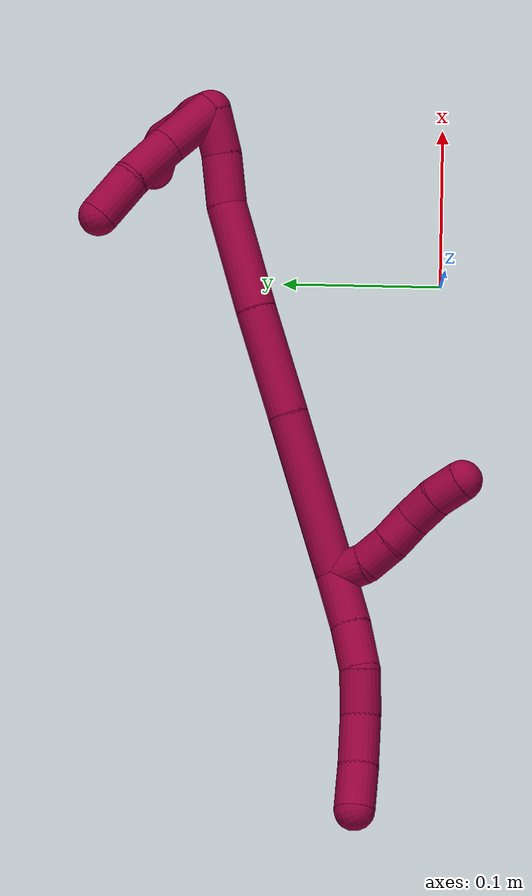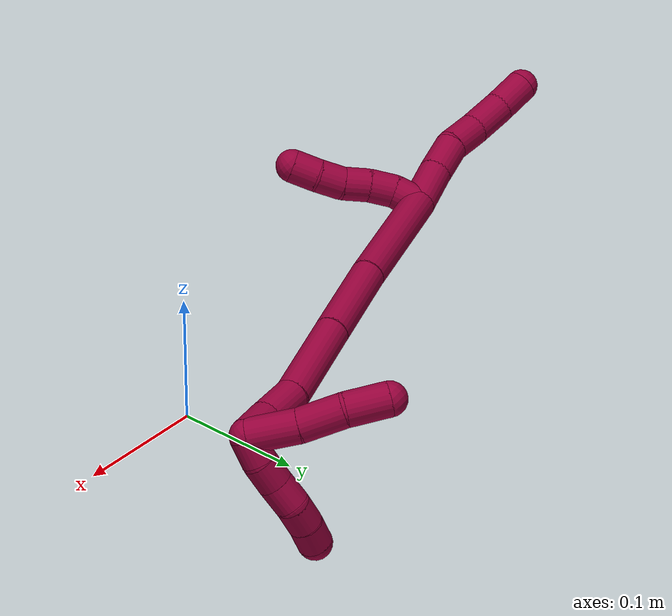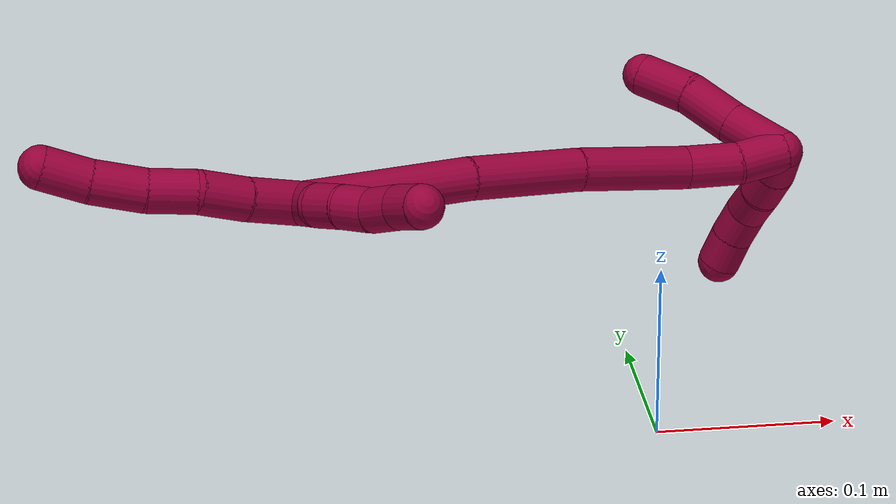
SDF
<sdf version="1.7">
 <world name="default">
  <model name="8">
   <static>0</static>
   <link name="8">
    <collision name="collision-cylinder-e_1_2_8">
     <pose>-0.01526 -0.007159 -0.003986 2.07883 -1.07802 -1.58819</pose>
     <geometry><cylinder><radius>0.0125</radius><length>0.034641</length></cylinder></geometry>
     <surface>
      <friction><ode><mu>1.16</mu><mu2>1.16</mu2><slip1>0</slip1><slip2>0</slip2></ode></friction>
      <contact><ode><kp>1e+06</kp><kd>1</kd><max_vel>0</max_vel><min_depth>0.001</min_depth></ode></contact>
     </surface>
    </collision>
    <visual name="visual-cylinder-e_1_2_8">
     <pose>-0.01526 -0.007159 -0.003986 2.07883 -1.07802 -1.58819</pose>
     <geometry><cylinder><radius>0.0125</radius><length>0.034641</length></cylinder></geometry>
     <material><ambient>0.584314 0 0.227451 1</ambient></material>
    </visual>
    <collision name="collision-cylinder-e_2_8_9">
     <pose>-0.042753 -0.021389 -0.010928 1.96683 -1.01112 -1.38723</pose>
     <geometry><cylinder><radius>0.0125</radius><length>0.028872</length></cylinder></geometry>
     <surface>
      <friction><ode><mu>1.16</mu><mu2>1.16</mu2><slip1>0</slip1><slip2>0</slip2></ode></friction>
      <contact><ode><kp>1e+06</kp><kd>1</kd><max_vel>0</max_vel><min_depth>0.001</min_depth></ode></contact>
     </surface>
    </collision>
    <visual name="visual-cylinder-e_2_8_9">
     <pose>-0.042753 -0.021389 -0.010928 1.96683 -1.01112 -1.38723</pose>
     <geometry><cylinder><radius>0.0125</radius><length>0.028872</length></cylinder></geometry>
     <material><ambient>0.584314 0 0.227451 1</ambient></material>
    </visual>
    <collision name="collision-cylinder-e_3_9_10">
     <pose>-0.06727 -0.034943 -0.012752 1.39785 -1.07896 -0.932406</pose>
     <geometry><cylinder><radius>0.0125</radius><length>0.027872</length></cylinder></geometry>
     <surface>
      <friction><ode><mu>1.16</mu><mu2>1.16</mu2><slip1>0</slip1><slip2>0</slip2></ode></friction>
      <contact><ode><kp>1e+06</kp><kd>1</kd><max_vel>0</max_vel><min_depth>0.001</min_depth></ode></contact>
     </surface>
    </collision>
    <visual name="visual-cylinder-e_3_9_10">
     <pose>-0.06727 -0.034943 -0.012752 1.39785 -1.07896 -0.932406</pose>
     <geometry><cylinder><radius>0.0125</radius><length>0.027872</length></cylinder></geometry>
     <material><ambient>0.584314 0 0.227451 1</ambient></material>
    </visual>
    <collision name="collision-cylinder-e_4_10_11">
     <pose>-0.092152 -0.050393 -0.011154 1.51886 -0.951523 -0.909858</pose>
     <geometry><cylinder><radius>0.0125</radius><length>0.030939</length></cylinder></geometry>
     <surface>
      <friction><ode><mu>1.16</mu><mu2>1.16</mu2><slip1>0</slip1><slip2>0</slip2></ode></friction>
      <contact><ode><kp>1e+06</kp><kd>1</kd><max_vel>0</max_vel><min_depth>0.001</min_depth></ode></contact>
     </surface>
    </collision>
    <visual name="visual-cylinder-e_4_10_11">
     <pose>-0.092152 -0.050393 -0.011154 1.51886 -0.951523 -0.909858</pose>
     <geometry><cylinder><radius>0.0125</radius><length>0.030939</length></cylinder></geometry>
     <material><ambient>0.584314 0 0.227451 1</ambient></material>
    </visual>
    <collision name="collision-cylinder-e_5_11_6">
     <pose>-0.115115 -0.068525 -0.010877 1.59151 -0.846718 -0.862346</pose>
     <geometry><cylinder><radius>0.0125</radius><length>0.027676</length></cylinder></geometry>
     <surface>
      <friction><ode><mu>1.16</mu><mu2>1.16</mu2><slip1>0</slip1><slip2>0</slip2></ode></friction>
      <contact><ode><kp>1e+06</kp><kd>1</kd><max_vel>0</max_vel><min_depth>0.001</min_depth></ode></contact>
     </surface>
    </collision>
    <visual name="visual-cylinder-e_5_11_6">
     <pose>-0.115115 -0.068525 -0.010877 1.59151 -0.846718 -0.862346</pose>
     <geometry><cylinder><radius>0.0125</radius><length>0.027676</length></cylinder></geometry>
     <material><ambient>0.584314 0 0.227451 1</ambient></material>
    </visual>
    <collision name="collision-cylinder-e_1_2_12">
     <pose>0.000247 0.003927 -0.009193 -2.73789 0.024706 -0.12059</pose>
     <geometry><cylinder><radius>0.0125</radius><length>0.02</length></cylinder></geometry>
     <surface>
      <friction><ode><mu>1.16</mu><mu2>1.16</mu2><slip1>0</slip1><slip2>0</slip2></ode></friction>
      <contact><ode><kp>1e+06</kp><kd>1</kd><max_vel>0</max_vel><min_depth>0.001</min_depth></ode></contact>
     </surface>
    </collision>
    <visual name="visual-cylinder-e_1_2_12">
     <pose>0.000247 0.003927 -0.009193 -2.73789 0.024706 -0.12059</pose>
     <geometry><cylinder><radius>0.0125</radius><length>0.02</length></cylinder></geometry>
     <material><ambient>0.584314 0 0.227451 1</ambient></material>
    </visual>
    <collision name="collision-cylinder-e_2_12_13">
     <pose>0.00376 0.012755 -0.026469 -2.59655 0.332649 -1.08184</pose>
     <geometry><cylinder><radius>0.0125</radius><length>0.02</length></cylinder></geometry>
     <surface>
      <friction><ode><mu>1.16</mu><mu2>1.16</mu2><slip1>0</slip1><slip2>0</slip2></ode></friction>
      <contact><ode><kp>1e+06</kp><kd>1</kd><max_vel>0</max_vel><min_depth>0.001</min_depth></ode></contact>
     </surface>
    </collision>
    <visual name="visual-cylinder-e_2_12_13">
     <pose>0.00376 0.012755 -0.026469 -2.59655 0.332649 -1.08184</pose>
     <geometry><cylinder><radius>0.0125</radius><length>0.02</length></cylinder></geometry>
     <material><ambient>0.584314 0 0.227451 1</ambient></material>
    </visual>
    <collision name="collision-cylinder-e_3_13_14">
     <pose>0.01134 0.0233 -0.041588 -2.46551 0.446104 -1.14605</pose>
     <geometry><cylinder><radius>0.0125</radius><length>0.02</length></cylinder></geometry>
     <surface>
      <friction><ode><mu>1.16</mu><mu2>1.16</mu2><slip1>0</slip1><slip2>0</slip2></ode></friction>
      <contact><ode><kp>1e+06</kp><kd>1</kd><max_vel>0</max_vel><min_depth>0.001</min_depth></ode></contact>
     </surface>
    </collision>
    <visual name="visual-cylinder-e_3_13_14">
     <pose>0.01134 0.0233 -0.041588 -2.46551 0.446104 -1.14605</pose>
     <geometry><cylinder><radius>0.0125</radius><length>0.02</length></cylinder></geometry>
     <material><ambient>0.584314 0 0.227451 1</ambient></material>
    </visual>
    <collision name="collision-cylinder-e_4_14_15">
     <pose>0.019531 0.032743 -0.057024 -2.71691 0.398141 -1.50446</pose>
     <geometry><cylinder><radius>0.0125</radius><length>0.02</length></cylinder></geometry>
     <surface>
      <friction><ode><mu>1.16</mu><mu2>1.16</mu2><slip1>0</slip1><slip2>0</slip2></ode></friction>
      <contact><ode><kp>1e+06</kp><kd>1</kd><max_vel>0</max_vel><min_depth>0.001</min_depth></ode></contact>
     </surface>
    </collision>
    <visual name="visual-cylinder-e_4_14_15">
     <pose>0.019531 0.032743 -0.057024 -2.71691 0.398141 -1.50446</pose>
     <geometry><cylinder><radius>0.0125</radius><length>0.02</length></cylinder></geometry>
     <material><ambient>0.584314 0 0.227451 1</ambient></material>
    </visual>
    <collision name="collision-cylinder-e_5_15_5">
     <pose>0.025701 0.040606 -0.074267 -2.71079 0.231356 -0.976397</pose>
     <geometry><cylinder><radius>0.0125</radius><length>0.02</length></cylinder></geometry>
     <surface>
      <friction><ode><mu>1.16</mu><mu2>1.16</mu2><slip1>0</slip1><slip2>0</slip2></ode></friction>
      <contact><ode><kp>1e+06</kp><kd>1</kd><max_vel>0</max_vel><min_depth>0.001</min_depth></ode></contact>
     </surface>
    </collision>
    <visual name="visual-cylinder-e_5_15_5">
     <pose>0.025701 0.040606 -0.074267 -2.71079 0.231356 -0.976397</pose>
     <geometry><cylinder><radius>0.0125</radius><length>0.02</length></cylinder></geometry>
     <material><ambient>0.584314 0 0.227451 1</ambient></material>
    </visual>
    <collision name="collision-cylinder-e_1_2_16">
     <pose>0.048823 0.013053 0.005063 -1.20081 1.29153 -0.952696</pose>
     <geometry><cylinder><radius>0.0125</radius><length>0.101582</length></cylinder></geometry>
     <surface>
      <friction><ode><mu>1.16</mu><mu2>1.16</mu2><slip1>0</slip1><slip2>0</slip2></ode></friction>
      <contact><ode><kp>1e+06</kp><kd>1</kd><max_vel>0</max_vel><min_depth>0.001</min_depth></ode></contact>
     </surface>
    </collision>
    <visual name="visual-cylinder-e_1_2_16">
     <pose>0.048823 0.013053 0.005063 -1.20081 1.29153 -0.952696</pose>
     <geometry><cylinder><radius>0.0125</radius><length>0.101582</length></cylinder></geometry>
     <material><ambient>0.584314 0 0.227451 1</ambient></material>
    </visual>
    <collision name="collision-cylinder-e_2_16_17">
     <pose>0.129976 0.036471 0.015151 -1.11928 1.22851 -0.832053</pose>
     <geometry><cylinder><radius>0.0125</radius><length>0.06864</length></cylinder></geometry>
     <surface>
      <friction><ode><mu>1.16</mu><mu2>1.16</mu2><slip1>0</slip1><slip2>0</slip2></ode></friction>
      <contact><ode><kp>1e+06</kp><kd>1</kd><max_vel>0</max_vel><min_depth>0.001</min_depth></ode></contact>
     </surface>
    </collision>
    <visual name="visual-cylinder-e_2_16_17">
     <pose>0.129976 0.036471 0.015151 -1.11928 1.22851 -0.832053</pose>
     <geometry><cylinder><radius>0.0125</radius><length>0.06864</length></cylinder></geometry>
     <material><ambient>0.584314 0 0.227451 1</ambient></material>
    </visual>
    <collision name="collision-cylinder-e_3_17_18">
     <pose>0.194179 0.058988 0.025851 -1.13404 1.1725 -0.800193</pose>
     <geometry><cylinder><radius>0.0125</radius><length>0.069162</length></cylinder></geometry>
     <surface>
      <friction><ode><mu>1.16</mu><mu2>1.16</mu2><slip1>0</slip1><slip2>0</slip2></ode></friction>
      <contact><ode><kp>1e+06</kp><kd>1</kd><max_vel>0</max_vel><min_depth>0.001</min_depth></ode></contact>
     </surface>
    </collision>
    <visual name="visual-cylinder-e_3_17_18">
     <pose>0.194179 0.058988 0.025851 -1.13404 1.1725 -0.800193</pose>
     <geometry><cylinder><radius>0.0125</radius><length>0.069162</length></cylinder></geometry>
     <material><ambient>0.584314 0 0.227451 1</ambient></material>
    </visual>
    <collision name="collision-cylinder-e_4_18_19">
     <pose>0.240953 0.077059 0.030729 -1.70442 1.18966 -1.31687</pose>
     <geometry><cylinder><radius>0.0125</radius><length>0.032103</length></cylinder></geometry>
     <surface>
      <friction><ode><mu>1.16</mu><mu2>1.16</mu2><slip1>0</slip1><slip2>0</slip2></ode></friction>
      <contact><ode><kp>1e+06</kp><kd>1</kd><max_vel>0</max_vel><min_depth>0.001</min_depth></ode></contact>
     </surface>
    </collision>
    <visual name="visual-cylinder-e_4_18_19">
     <pose>0.240953 0.077059 0.030729 -1.70442 1.18966 -1.31687</pose>
     <geometry><cylinder><radius>0.0125</radius><length>0.032103</length></cylinder></geometry>
     <material><ambient>0.584314 0 0.227451 1</ambient></material>
    </visual>
    <collision name="collision-cylinder-e_5_19_1">
     <pose>0.269853 0.085602 0.029351 -1.789 1.38105 -1.59985</pose>
     <geometry><cylinder><radius>0.0125</radius><length>0.028513</length></cylinder></geometry>
     <surface>
      <friction><ode><mu>1.16</mu><mu2>1.16</mu2><slip1>0</slip1><slip2>0</slip2></ode></friction>
      <contact><ode><kp>1e+06</kp><kd>1</kd><max_vel>0</max_vel><min_depth>0.001</min_depth></ode></contact>
     </surface>
    </collision>
    <visual name="visual-cylinder-e_5_19_1">
     <pose>0.269853 0.085602 0.029351 -1.789 1.38105 -1.59985</pose>
     <geometry><cylinder><radius>0.0125</radius><length>0.028513</length></cylinder></geometry>
     <material><ambient>0.584314 0 0.227451 1</ambient></material>
    </visual>
    <collision name="collision-cylinder-e_1_1_20">
     <pose>0.279129 0.073146 0.037707 1.0358 -0.263237 -0.150573</pose>
     <geometry><cylinder><radius>0.0125</radius><length>0.036312</length></cylinder></geometry>
     <surface>
      <friction><ode><mu>1.16</mu><mu2>1.16</mu2><slip1>0</slip1><slip2>0</slip2></ode></friction>
      <contact><ode><kp>1e+06</kp><kd>1</kd><max_vel>0</max_vel><min_depth>0.001</min_depth></ode></contact>
     </surface>
    </collision>
    <visual name="visual-cylinder-e_1_1_20">
     <pose>0.279129 0.073146 0.037707 1.0358 -0.263237 -0.150573</pose>
     <geometry><cylinder><radius>0.0125</radius><length>0.036312</length></cylinder></geometry>
     <material><ambient>0.584314 0 0.227451 1</ambient></material>
    </visual>
    <collision name="collision-cylinder-e_2_20_21">
     <pose>0.270029 0.043667 0.052542 1.18205 -0.274175 -0.184617</pose>
     <geometry><cylinder><radius>0.0125</radius><length>0.032323</length></cylinder></geometry>
     <surface>
      <friction><ode><mu>1.16</mu><mu2>1.16</mu2><slip1>0</slip1><slip2>0</slip2></ode></friction>
      <contact><ode><kp>1e+06</kp><kd>1</kd><max_vel>0</max_vel><min_depth>0.001</min_depth></ode></contact>
     </surface>
    </collision>
    <visual name="visual-cylinder-e_2_20_21">
     <pose>0.270029 0.043667 0.052542 1.18205 -0.274175 -0.184617</pose>
     <geometry><cylinder><radius>0.0125</radius><length>0.032323</length></cylinder></geometry>
     <material><ambient>0.584314 0 0.227451 1</ambient></material>
    </visual>
    <collision name="collision-cylinder-e_3_21_4">
     <pose>0.25909 0.017055 0.065762 1.03075 -0.431805 -0.247195</pose>
     <geometry><cylinder><radius>0.0125</radius><length>0.031364</length></cylinder></geometry>
     <surface>
      <friction><ode><mu>1.16</mu><mu2>1.16</mu2><slip1>0</slip1><slip2>0</slip2></ode></friction>
      <contact><ode><kp>1e+06</kp><kd>1</kd><max_vel>0</max_vel><min_depth>0.001</min_depth></ode></contact>
     </surface>
    </collision>
    <visual name="visual-cylinder-e_3_21_4">
     <pose>0.25909 0.017055 0.065762 1.03075 -0.431805 -0.247195</pose>
     <geometry><cylinder><radius>0.0125</radius><length>0.031364</length></cylinder></geometry>
     <material><ambient>0.584314 0 0.227451 1</ambient></material>
    </visual>
    <collision name="collision-cylinder-e_1_1_22">
     <pose>0.28304 0.091499 0.038184 -0.334444 -0.081464 0.013758</pose>
     <geometry><cylinder><radius>0.0125</radius><length>0.02</length></cylinder></geometry>
     <surface>
      <friction><ode><mu>1.16</mu><mu2>1.16</mu2><slip1>0</slip1><slip2>0</slip2></ode></friction>
      <contact><ode><kp>1e+06</kp><kd>1</kd><max_vel>0</max_vel><min_depth>0.001</min_depth></ode></contact>
     </surface>
    </collision>
    <visual name="visual-cylinder-e_1_1_22">
     <pose>0.28304 0.091499 0.038184 -0.334444 -0.081464 0.013758</pose>
     <geometry><cylinder><radius>0.0125</radius><length>0.02</length></cylinder></geometry>
     <material><ambient>0.584314 0 0.227451 1</ambient></material>
    </visual>
    <collision name="collision-cylinder-e_2_22_23">
     <pose>0.279443 0.097199 0.056891 -0.255633 -0.282082 0.036491</pose>
     <geometry><cylinder><radius>0.0125</radius><length>0.02</length></cylinder></geometry>
     <surface>
      <friction><ode><mu>1.16</mu><mu2>1.16</mu2><slip1>0</slip1><slip2>0</slip2></ode></friction>
      <contact><ode><kp>1e+06</kp><kd>1</kd><max_vel>0</max_vel><min_depth>0.001</min_depth></ode></contact>
     </surface>
    </collision>
    <visual name="visual-cylinder-e_2_22_23">
     <pose>0.279443 0.097199 0.056891 -0.255633 -0.282082 0.036491</pose>
     <geometry><cylinder><radius>0.0125</radius><length>0.02</length></cylinder></geometry>
     <material><ambient>0.584314 0 0.227451 1</ambient></material>
    </visual>
    <collision name="collision-cylinder-e_3_23_24">
     <pose>0.274762 0.101175 0.075879 -0.158315 -0.190842 0.015184</pose>
     <geometry><cylinder><radius>0.0125</radius><length>0.02</length></cylinder></geometry>
     <surface>
      <friction><ode><mu>1.16</mu><mu2>1.16</mu2><slip1>0</slip1><slip2>0</slip2></ode></friction>
      <contact><ode><kp>1e+06</kp><kd>1</kd><max_vel>0</max_vel><min_depth>0.001</min_depth></ode></contact>
     </surface>
    </collision>
    <visual name="visual-cylinder-e_3_23_24">
     <pose>0.274762 0.101175 0.075879 -0.158315 -0.190842 0.015184</pose>
     <geometry><cylinder><radius>0.0125</radius><length>0.02</length></cylinder></geometry>
     <material><ambient>0.584314 0 0.227451 1</ambient></material>
    </visual>
    <collision name="collision-cylinder-e_4_24_25">
     <pose>0.268631 0.106157 0.093958 -0.388758 -0.437234 0.087418</pose>
     <geometry><cylinder><radius>0.0125</radius><length>0.02</length></cylinder></geometry>
     <surface>
      <friction><ode><mu>1.16</mu><mu2>1.16</mu2><slip1>0</slip1><slip2>0</slip2></ode></friction>
      <contact><ode><kp>1e+06</kp><kd>1</kd><max_vel>0</max_vel><min_depth>0.001</min_depth></ode></contact>
     </surface>
    </collision>
    <visual name="visual-cylinder-e_4_24_25">
     <pose>0.268631 0.106157 0.093958 -0.388758 -0.437234 0.087418</pose>
     <geometry><cylinder><radius>0.0125</radius><length>0.02</length></cylinder></geometry>
     <material><ambient>0.584314 0 0.227451 1</ambient></material>
    </visual>
    <collision name="collision-cylinder-e_5_25_3">
     <pose>0.25994 0.113968 0.11015 -0.510906 -0.461925 0.122673</pose>
     <geometry><cylinder><radius>0.0125</radius><length>0.02</length></cylinder></geometry>
     <surface>
      <friction><ode><mu>1.16</mu><mu2>1.16</mu2><slip1>0</slip1><slip2>0</slip2></ode></friction>
      <contact><ode><kp>1e+06</kp><kd>1</kd><max_vel>0</max_vel><min_depth>0.001</min_depth></ode></contact>
     </surface>
    </collision>
    <visual name="visual-cylinder-e_5_25_3">
     <pose>0.25994 0.113968 0.11015 -0.510906 -0.461925 0.122673</pose>
     <geometry><cylinder><radius>0.0125</radius><length>0.02</length></cylinder></geometry>
     <material><ambient>0.584314 0 0.227451 1</ambient></material>
    </visual>
    <collision name="collision-sphere-3">
     <pose>0.255483 0.118345 0.117959 0 -0 0</pose>
     <geometry><sphere><radius>0.0125</radius></sphere></geometry>
     <surface>
      <friction><ode><mu>1.16</mu><mu2>1.16</mu2><slip1>0</slip1><slip2>0</slip2></ode></friction>
      <contact><ode><kp>1e+06</kp><kd>1</kd><max_vel>0</max_vel><min_depth>0.001</min_depth></ode></contact>
     </surface>
    </collision>
    <visual name="visual-sphere-3">
     <pose>0.255483 0.118345 0.117959 0 -0 0</pose>
     <geometry><sphere><radius>0.0125</radius></sphere></geometry>
     <material><ambient>0.584314 0 0.227451 1</ambient></material>
    </visual>
    <collision name="collision-sphere-25">
     <pose>0.264397 0.109591 0.102341 0 -0 0</pose>
     <geometry><sphere><radius>0.0125</radius></sphere></geometry>
     <surface>
      <friction><ode><mu>1.16</mu><mu2>1.16</mu2><slip1>0</slip1><slip2>0</slip2></ode></friction>
      <contact><ode><kp>1e+06</kp><kd>1</kd><max_vel>0</max_vel><min_depth>0.001</min_depth></ode></contact>
     </surface>
    </collision>
    <visual name="visual-sphere-25">
     <pose>0.264397 0.109591 0.102341 0 -0 0</pose>
     <geometry><sphere><radius>0.0125</radius></sphere></geometry>
     <material><ambient>0.584314 0 0.227451 1</ambient></material>
    </visual>
    <collision name="collision-sphere-24">
     <pose>0.272865 0.102723 0.085575 0 -0 0</pose>
     <geometry><sphere><radius>0.0125</radius></sphere></geometry>
     <surface>
      <friction><ode><mu>1.16</mu><mu2>1.16</mu2><slip1>0</slip1><slip2>0</slip2></ode></friction>
      <contact><ode><kp>1e+06</kp><kd>1</kd><max_vel>0</max_vel><min_depth>0.001</min_depth></ode></contact>
     </surface>
    </collision>
    <visual name="visual-sphere-24">
     <pose>0.272865 0.102723 0.085575 0 -0 0</pose>
     <geometry><sphere><radius>0.0125</radius></sphere></geometry>
     <material><ambient>0.584314 0 0.227451 1</ambient></material>
    </visual>
    <collision name="collision-sphere-23">
     <pose>0.276659 0.099628 0.066184 0 -0 0</pose>
     <geometry><sphere><radius>0.0125</radius></sphere></geometry>
     <surface>
      <friction><ode><mu>1.16</mu><mu2>1.16</mu2><slip1>0</slip1><slip2>0</slip2></ode></friction>
      <contact><ode><kp>1e+06</kp><kd>1</kd><max_vel>0</max_vel><min_depth>0.001</min_depth></ode></contact>
     </surface>
    </collision>
    <visual name="visual-sphere-23">
     <pose>0.276659 0.099628 0.066184 0 -0 0</pose>
     <geometry><sphere><radius>0.0125</radius></sphere></geometry>
     <material><ambient>0.584314 0 0.227451 1</ambient></material>
    </visual>
    <collision name="collision-sphere-22">
     <pose>0.282226 0.09477 0.047598 0 -0 0</pose>
     <geometry><sphere><radius>0.0125</radius></sphere></geometry>
     <surface>
      <friction><ode><mu>1.16</mu><mu2>1.16</mu2><slip1>0</slip1><slip2>0</slip2></ode></friction>
      <contact><ode><kp>1e+06</kp><kd>1</kd><max_vel>0</max_vel><min_depth>0.001</min_depth></ode></contact>
     </surface>
    </collision>
    <visual name="visual-sphere-22">
     <pose>0.282226 0.09477 0.047598 0 -0 0</pose>
     <geometry><sphere><radius>0.0125</radius></sphere></geometry>
     <material><ambient>0.584314 0 0.227451 1</ambient></material>
    </visual>
    <collision name="collision-sphere-4">
     <pose>0.252527 0.004839 0.073085 0 -0 0</pose>
     <geometry><sphere><radius>0.0125</radius></sphere></geometry>
     <surface>
      <friction><ode><mu>1.16</mu><mu2>1.16</mu2><slip1>0</slip1><slip2>0</slip2></ode></friction>
      <contact><ode><kp>1e+06</kp><kd>1</kd><max_vel>0</max_vel><min_depth>0.001</min_depth></ode></contact>
     </surface>
    </collision>
    <visual name="visual-sphere-4">
     <pose>0.252527 0.004839 0.073085 0 -0 0</pose>
     <geometry><sphere><radius>0.0125</radius></sphere></geometry>
     <material><ambient>0.584314 0 0.227451 1</ambient></material>
    </visual>
    <collision name="collision-sphere-21">
     <pose>0.265653 0.02927 0.058439 0 -0 0</pose>
     <geometry><sphere><radius>0.0125</radius></sphere></geometry>
     <surface>
      <friction><ode><mu>1.16</mu><mu2>1.16</mu2><slip1>0</slip1><slip2>0</slip2></ode></friction>
      <contact><ode><kp>1e+06</kp><kd>1</kd><max_vel>0</max_vel><min_depth>0.001</min_depth></ode></contact>
     </surface>
    </collision>
    <visual name="visual-sphere-21">
     <pose>0.265653 0.02927 0.058439 0 -0 0</pose>
     <geometry><sphere><radius>0.0125</radius></sphere></geometry>
     <material><ambient>0.584314 0 0.227451 1</ambient></material>
    </visual>
    <collision name="collision-sphere-20">
     <pose>0.274405 0.058065 0.046645 0 -0 0</pose>
     <geometry><sphere><radius>0.0125</radius></sphere></geometry>
     <surface>
      <friction><ode><mu>1.16</mu><mu2>1.16</mu2><slip1>0</slip1><slip2>0</slip2></ode></friction>
      <contact><ode><kp>1e+06</kp><kd>1</kd><max_vel>0</max_vel><min_depth>0.001</min_depth></ode></contact>
     </surface>
    </collision>
    <visual name="visual-sphere-20">
     <pose>0.274405 0.058065 0.046645 0 -0 0</pose>
     <geometry><sphere><radius>0.0125</radius></sphere></geometry>
     <material><ambient>0.584314 0 0.227451 1</ambient></material>
    </visual>
    <collision name="collision-sphere-6">
     <pose>-0.125481 -0.07769 -0.011067 0 -0 0</pose>
     <geometry><sphere><radius>0.0125</radius></sphere></geometry>
     <surface>
      <friction><ode><mu>1.16</mu><mu2>1.16</mu2><slip1>0</slip1><slip2>0</slip2></ode></friction>
      <contact><ode><kp>1e+06</kp><kd>1</kd><max_vel>0</max_vel><min_depth>0.001</min_depth></ode></contact>
     </surface>
    </collision>
    <visual name="visual-sphere-6">
     <pose>-0.125481 -0.07769 -0.011067 0 -0 0</pose>
     <geometry><sphere><radius>0.0125</radius></sphere></geometry>
     <material><ambient>0.584314 0 0.227451 1</ambient></material>
    </visual>
    <collision name="collision-sphere-11">
     <pose>-0.104748 -0.05936 -0.010688 0 -0 0</pose>
     <geometry><sphere><radius>0.0125</radius></sphere></geometry>
     <surface>
      <friction><ode><mu>1.16</mu><mu2>1.16</mu2><slip1>0</slip1><slip2>0</slip2></ode></friction>
      <contact><ode><kp>1e+06</kp><kd>1</kd><max_vel>0</max_vel><min_depth>0.001</min_depth></ode></contact>
     </surface>
    </collision>
    <visual name="visual-sphere-11">
     <pose>-0.104748 -0.05936 -0.010688 0 -0 0</pose>
     <geometry><sphere><radius>0.0125</radius></sphere></geometry>
     <material><ambient>0.584314 0 0.227451 1</ambient></material>
    </visual>
    <collision name="collision-sphere-10">
     <pose>-0.079555 -0.041426 -0.01162 0 -0 0</pose>
     <geometry><sphere><radius>0.0125</radius></sphere></geometry>
     <surface>
      <friction><ode><mu>1.16</mu><mu2>1.16</mu2><slip1>0</slip1><slip2>0</slip2></ode></friction>
      <contact><ode><kp>1e+06</kp><kd>1</kd><max_vel>0</max_vel><min_depth>0.001</min_depth></ode></contact>
     </surface>
    </collision>
    <visual name="visual-sphere-10">
     <pose>-0.079555 -0.041426 -0.01162 0 -0 0</pose>
     <geometry><sphere><radius>0.0125</radius></sphere></geometry>
     <material><ambient>0.584314 0 0.227451 1</ambient></material>
    </visual>
    <collision name="collision-sphere-9">
     <pose>-0.054986 -0.02846 -0.013885 0 -0 0</pose>
     <geometry><sphere><radius>0.0125</radius></sphere></geometry>
     <surface>
      <friction><ode><mu>1.16</mu><mu2>1.16</mu2><slip1>0</slip1><slip2>0</slip2></ode></friction>
      <contact><ode><kp>1e+06</kp><kd>1</kd><max_vel>0</max_vel><min_depth>0.001</min_depth></ode></contact>
     </surface>
    </collision>
    <visual name="visual-sphere-9">
     <pose>-0.054986 -0.02846 -0.013885 0 -0 0</pose>
     <geometry><sphere><radius>0.0125</radius></sphere></geometry>
     <material><ambient>0.584314 0 0.227451 1</ambient></material>
    </visual>
    <collision name="collision-sphere-2">
     <geometry><sphere><radius>0.0125</radius></sphere></geometry>
     <surface>
      <friction><ode><mu>1.16</mu><mu2>1.16</mu2><slip1>0</slip1><slip2>0</slip2></ode></friction>
      <contact><ode><kp>1e+06</kp><kd>1</kd><max_vel>0</max_vel><min_depth>0.001</min_depth></ode></contact>
     </surface>
    </collision>
    <visual name="visual-sphere-2">
     <geometry><sphere><radius>0.0125</radius></sphere></geometry>
     <material><ambient>0.584314 0 0.227451 1</ambient></material>
    </visual>
    <collision name="collision-sphere-19">
     <pose>0.255853 0.082977 0.029933 0 -0 0</pose>
     <geometry><sphere><radius>0.0125</radius></sphere></geometry>
     <surface>
      <friction><ode><mu>1.16</mu><mu2>1.16</mu2><slip1>0</slip1><slip2>0</slip2></ode></friction>
      <contact><ode><kp>1e+06</kp><kd>1</kd><max_vel>0</max_vel><min_depth>0.001</min_depth></ode></contact>
     </surface>
    </collision>
    <visual name="visual-sphere-19">
     <pose>0.255853 0.082977 0.029933 0 -0 0</pose>
     <geometry><sphere><radius>0.0125</radius></sphere></geometry>
     <material><ambient>0.584314 0 0.227451 1</ambient></material>
    </visual>
    <collision name="collision-sphere-8">
     <pose>-0.030519 -0.014318 -0.007972 0 -0 0</pose>
     <geometry><sphere><radius>0.0125</radius></sphere></geometry>
     <surface>
      <friction><ode><mu>1.16</mu><mu2>1.16</mu2><slip1>0</slip1><slip2>0</slip2></ode></friction>
      <contact><ode><kp>1e+06</kp><kd>1</kd><max_vel>0</max_vel><min_depth>0.001</min_depth></ode></contact>
     </surface>
    </collision>
    <visual name="visual-sphere-8">
     <pose>-0.030519 -0.014318 -0.007972 0 -0 0</pose>
     <geometry><sphere><radius>0.0125</radius></sphere></geometry>
     <material><ambient>0.584314 0 0.227451 1</ambient></material>
    </visual>
    <collision name="collision-sphere-12">
     <pose>0.000494 0.007854 -0.018387 0 -0 0</pose>
     <geometry><sphere><radius>0.0125</radius></sphere></geometry>
     <surface>
      <friction><ode><mu>1.16</mu><mu2>1.16</mu2><slip1>0</slip1><slip2>0</slip2></ode></friction>
      <contact><ode><kp>1e+06</kp><kd>1</kd><max_vel>0</max_vel><min_depth>0.001</min_depth></ode></contact>
     </surface>
    </collision>
    <visual name="visual-sphere-12">
     <pose>0.000494 0.007854 -0.018387 0 -0 0</pose>
     <geometry><sphere><radius>0.0125</radius></sphere></geometry>
     <material><ambient>0.584314 0 0.227451 1</ambient></material>
    </visual>
    <collision name="collision-sphere-13">
     <pose>0.007025 0.017655 -0.034551 0 -0 0</pose>
     <geometry><sphere><radius>0.0125</radius></sphere></geometry>
     <surface>
      <friction><ode><mu>1.16</mu><mu2>1.16</mu2><slip1>0</slip1><slip2>0</slip2></ode></friction>
      <contact><ode><kp>1e+06</kp><kd>1</kd><max_vel>0</max_vel><min_depth>0.001</min_depth></ode></contact>
     </surface>
    </collision>
    <visual name="visual-sphere-13">
     <pose>0.007025 0.017655 -0.034551 0 -0 0</pose>
     <geometry><sphere><radius>0.0125</radius></sphere></geometry>
     <material><ambient>0.584314 0 0.227451 1</ambient></material>
    </visual>
    <collision name="collision-sphere-14">
     <pose>0.015654 0.028945 -0.048625 0 -0 0</pose>
     <geometry><sphere><radius>0.0125</radius></sphere></geometry>
     <surface>
      <friction><ode><mu>1.16</mu><mu2>1.16</mu2><slip1>0</slip1><slip2>0</slip2></ode></friction>
      <contact><ode><kp>1e+06</kp><kd>1</kd><max_vel>0</max_vel><min_depth>0.001</min_depth></ode></contact>
     </surface>
    </collision>
    <visual name="visual-sphere-14">
     <pose>0.015654 0.028945 -0.048625 0 -0 0</pose>
     <geometry><sphere><radius>0.0125</radius></sphere></geometry>
     <material><ambient>0.584314 0 0.227451 1</ambient></material>
    </visual>
    <collision name="collision-sphere-15">
     <pose>0.023408 0.036541 -0.065423 0 -0 0</pose>
     <geometry><sphere><radius>0.0125</radius></sphere></geometry>
     <surface>
      <friction><ode><mu>1.16</mu><mu2>1.16</mu2><slip1>0</slip1><slip2>0</slip2></ode></friction>
      <contact><ode><kp>1e+06</kp><kd>1</kd><max_vel>0</max_vel><min_depth>0.001</min_depth></ode></contact>
     </surface>
    </collision>
    <visual name="visual-sphere-15">
     <pose>0.023408 0.036541 -0.065423 0 -0 0</pose>
     <geometry><sphere><radius>0.0125</radius></sphere></geometry>
     <material><ambient>0.584314 0 0.227451 1</ambient></material>
    </visual>
    <collision name="collision-sphere-5">
     <pose>0.027994 0.04467 -0.083111 0 -0 0</pose>
     <geometry><sphere><radius>0.0125</radius></sphere></geometry>
     <surface>
      <friction><ode><mu>1.16</mu><mu2>1.16</mu2><slip1>0</slip1><slip2>0</slip2></ode></friction>
      <contact><ode><kp>1e+06</kp><kd>1</kd><max_vel>0</max_vel><min_depth>0.001</min_depth></ode></contact>
     </surface>
    </collision>
    <visual name="visual-sphere-5">
     <pose>0.027994 0.04467 -0.083111 0 -0 0</pose>
     <geometry><sphere><radius>0.0125</radius></sphere></geometry>
     <material><ambient>0.584314 0 0.227451 1</ambient></material>
    </visual>
    <collision name="collision-sphere-16">
     <pose>0.097646 0.026106 0.010125 0 -0 0</pose>
     <geometry><sphere><radius>0.0125</radius></sphere></geometry>
     <surface>
      <friction><ode><mu>1.16</mu><mu2>1.16</mu2><slip1>0</slip1><slip2>0</slip2></ode></friction>
      <contact><ode><kp>1e+06</kp><kd>1</kd><max_vel>0</max_vel><min_depth>0.001</min_depth></ode></contact>
     </surface>
    </collision>
    <visual name="visual-sphere-16">
     <pose>0.097646 0.026106 0.010125 0 -0 0</pose>
     <geometry><sphere><radius>0.0125</radius></sphere></geometry>
     <material><ambient>0.584314 0 0.227451 1</ambient></material>
    </visual>
    <collision name="collision-sphere-17">
     <pose>0.162305 0.046835 0.020177 0 -0 0</pose>
     <geometry><sphere><radius>0.0125</radius></sphere></geometry>
     <surface>
      <friction><ode><mu>1.16</mu><mu2>1.16</mu2><slip1>0</slip1><slip2>0</slip2></ode></friction>
      <contact><ode><kp>1e+06</kp><kd>1</kd><max_vel>0</max_vel><min_depth>0.001</min_depth></ode></contact>
     </surface>
    </collision>
    <visual name="visual-sphere-17">
     <pose>0.162305 0.046835 0.020177 0 -0 0</pose>
     <geometry><sphere><radius>0.0125</radius></sphere></geometry>
     <material><ambient>0.584314 0 0.227451 1</ambient></material>
    </visual>
    <collision name="collision-sphere-18">
     <pose>0.226053 0.071142 0.031524 0 -0 0</pose>
     <geometry><sphere><radius>0.0125</radius></sphere></geometry>
     <surface>
      <friction><ode><mu>1.16</mu><mu2>1.16</mu2><slip1>0</slip1><slip2>0</slip2></ode></friction>
      <contact><ode><kp>1e+06</kp><kd>1</kd><max_vel>0</max_vel><min_depth>0.001</min_depth></ode></contact>
     </surface>
    </collision>
    <visual name="visual-sphere-18">
     <pose>0.226053 0.071142 0.031524 0 -0 0</pose>
     <geometry><sphere><radius>0.0125</radius></sphere></geometry>
     <material><ambient>0.584314 0 0.227451 1</ambient></material>
    </visual>
    <collision name="collision-sphere-1">
     <pose>0.283854 0.088227 0.028769 0 -0 0</pose>
     <geometry><sphere><radius>0.0125</radius></sphere></geometry>
     <surface>
      <friction><ode><mu>1.16</mu><mu2>1.16</mu2><slip1>0</slip1><slip2>0</slip2></ode></friction>
      <contact><ode><kp>1e+06</kp><kd>1</kd><max_vel>0</max_vel><min_depth>0.001</min_depth></ode></contact>
     </surface>
    </collision>
    <visual name="visual-sphere-1">
     <pose>0.283854 0.088227 0.028769 0 -0 0</pose>
     <geometry><sphere><radius>0.0125</radius></sphere></geometry>
     <material><ambient>0.584314 0 0.227451 1</ambient></material>
    </visual>
    <inertial>
     <pose>0.118112 0.032797 0.016228 0 -0 0</pose>
     <mass>0.75</mass>
     <inertia>
      <ixx>1.3e-05</ixx>
      <ixy>0</ixy>
      <ixz>0</ixz>
      <iyy>0.000117</iyy>
      <iyz>0</iyz>
      <izz>-0.000157</izz>
     </inertia>
    </inertial>
   </link>
   <pose>-0.188988 0.064691 0.121615 -2.32044 -0.214528 0.409143</pose>
  </model>
 </world>
</sdf>
